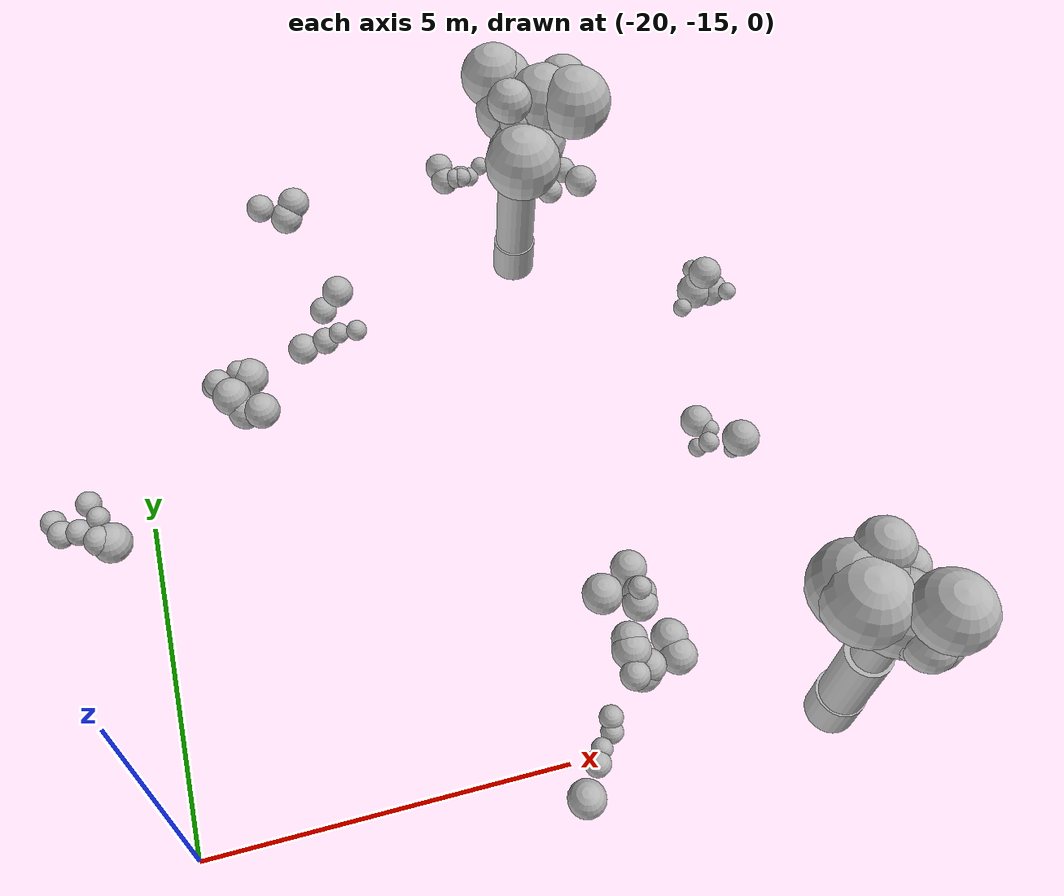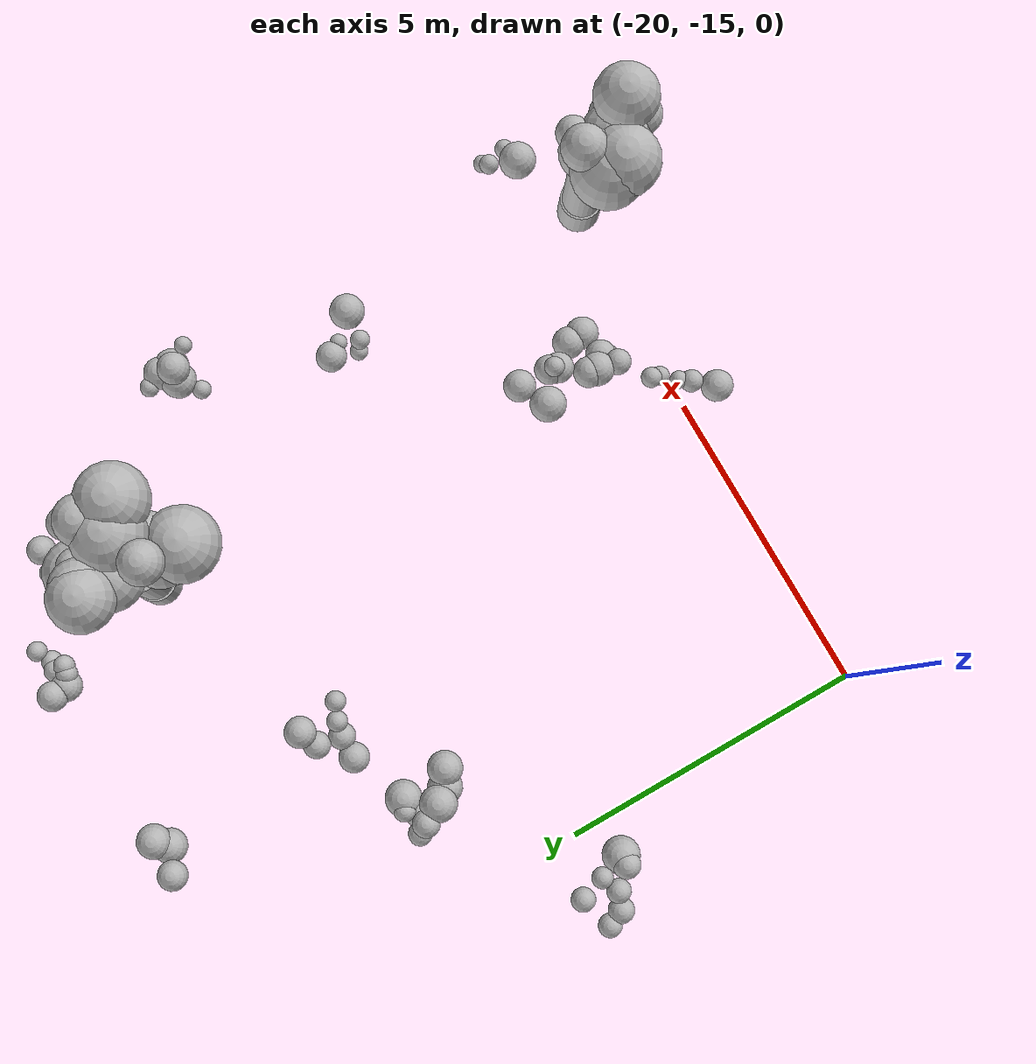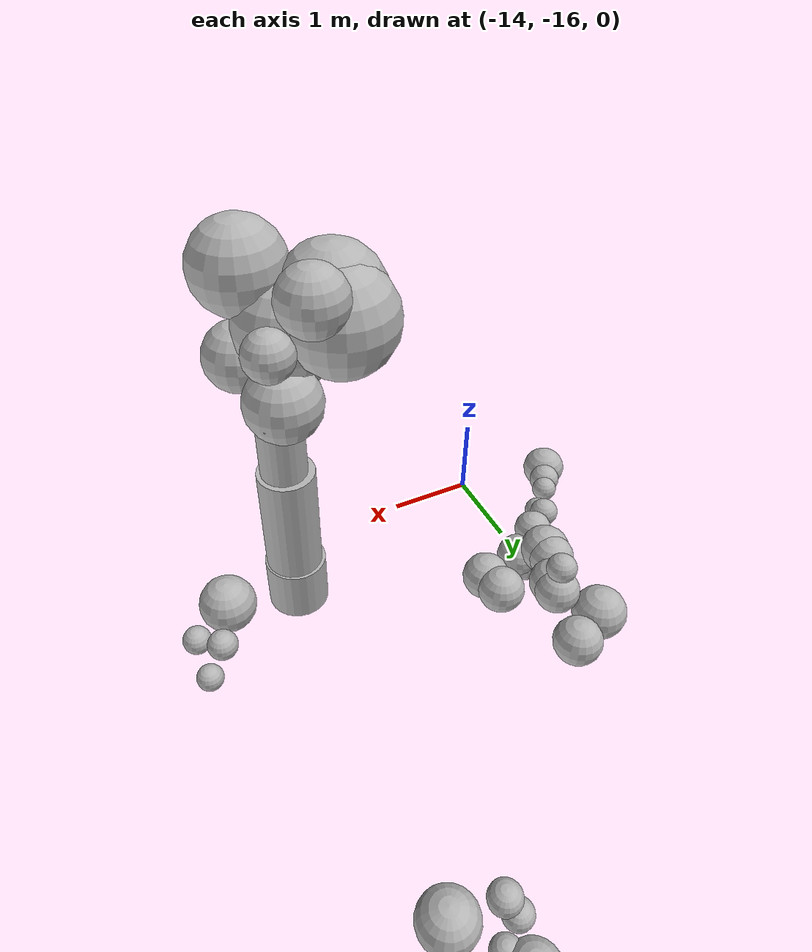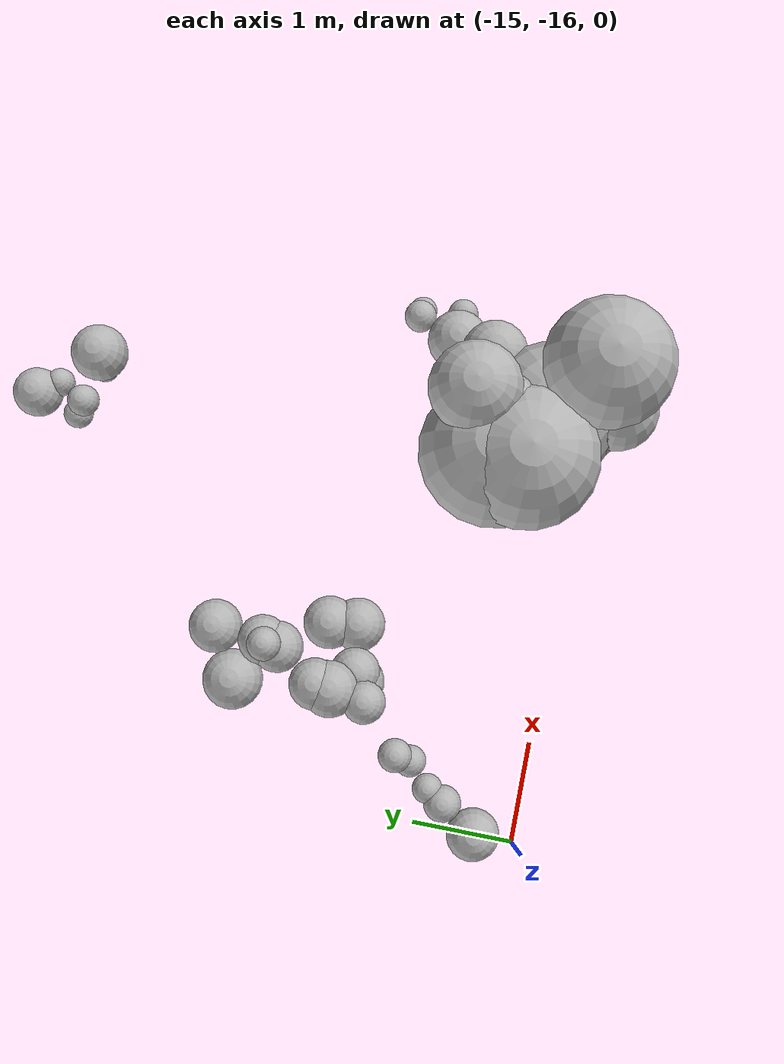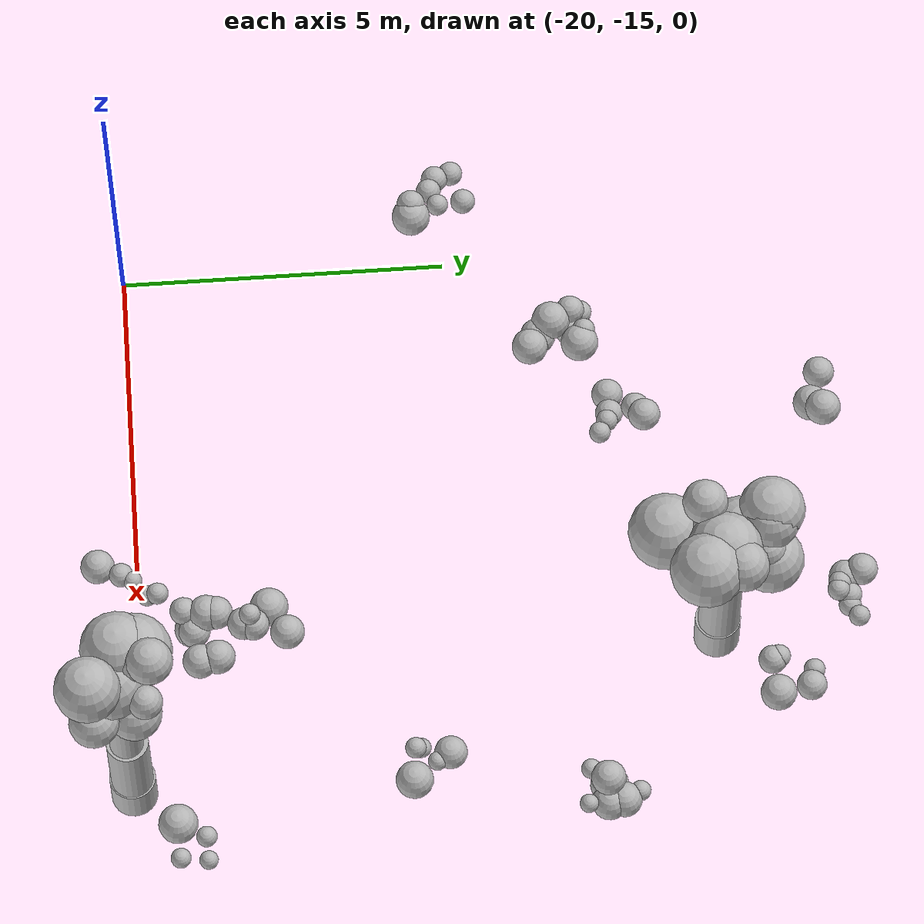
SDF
<sdf version="1.6">
 <world name="default">
  <model name="bush_6">
   <static>true</static>
   <pose>-11.2964 -15.1769 0 0 0 0</pose>
   <link name="trunk">
    <pose>0 0 1.5000 0 0 0</pose>
    <collision name="trunk_c">
     <geometry><cylinder><radius>0.3500</radius><length>3.0000</length></cylinder></geometry>
    </collision>
   </link>
   <link name="trunk_v0">
    <pose>0.0013 -0.0008 0.3100 0 0 0</pose>
    <visual name="trunk_v0_v">
     <geometry><cylinder><radius>0.3448</radius><length>0.6448</length></cylinder></geometry>
     <material>
      <script>
       <uri>model://bushfire/materials/scripts</uri>
       <uri>model://bushfire/materials/textures</uri>
       <name>Bushfire/CharBark</name>
      </script>
     </material>
    </visual>
   </link>
   <link name="trunk_v1">
    <pose>0.0093 -0.0059 1.2700 0 0 0</pose>
    <visual name="trunk_v1_v">
     <geometry><cylinder><radius>0.3150</radius><length>1.3520</length></cylinder></geometry>
     <material>
      <script>
       <uri>model://bushfire/materials/scripts</uri>
       <uri>model://bushfire/materials/textures</uri>
       <name>Bushfire/BarkStringy</name>
      </script>
     </material>
    </visual>
   </link>
   <link name="trunk_v2">
    <pose>0.0236 -0.0149 2.4600 0 0 0</pose>
    <visual name="trunk_v2_v">
     <geometry><cylinder><radius>0.2520</radius><length>1.1232</length></cylinder></geometry>
     <material>
      <script>
       <uri>model://bushfire/materials/scripts</uri>
       <uri>model://bushfire/materials/textures</uri>
       <name>Bushfire/BarkStringy</name>
      </script>
     </material>
    </visual>
   </link>
   <link name="branch0">
    <pose>-0.2503 0.0644 2.9720 0 0.8070 2.8900</pose>
    <visual name="branch0_v">
     <geometry><cylinder><radius>0.0356</radius><length>0.7158</length></cylinder></geometry>
     <material>
      <script>
       <uri>model://bushfire/materials/scripts</uri>
       <uri>model://bushfire/materials/textures</uri>
       <name>Bushfire/BarkStringy</name>
      </script>
     </material>
    </visual>
   </link>
   <link name="branch1">
    <pose>0.0379 -0.2902 2.9688 0 0.9047 4.8422</pose>
    <visual name="branch1_v">
     <geometry><cylinder><radius>0.0315</radius><length>0.7445</length></cylinder></geometry>
     <material>
      <script>
       <uri>model://bushfire/materials/scripts</uri>
       <uri>model://bushfire/materials/textures</uri>
       <name>Bushfire/BarkStringy</name>
      </script>
     </material>
    </visual>
   </link>
   <link name="branch2">
    <pose>0.1408 0.2064 2.6570 0 0.8220 7.2553</pose>
    <visual name="branch2_v">
     <geometry><cylinder><radius>0.0325</radius><length>0.6823</length></cylinder></geometry>
     <material>
      <script>
       <uri>model://bushfire/materials/scripts</uri>
       <uri>model://bushfire/materials/textures</uri>
       <name>Bushfire/BarkStringy</name>
      </script>
     </material>
    </visual>
   </link>
   <link name="foliage0">
    <pose>-0.2468 0.4443 4.1357 0 0 0</pose>
    <visual name="foliage0_v">
     <geometry><sphere><radius>0.3452</radius></sphere></geometry>
     <material>
      <script>
       <uri>model://bushfire/materials/scripts</uri>
       <uri>model://bushfire/materials/textures</uri>
       <name>Bushfire/Foliage1</name>
      </script>
     </material>
    </visual>
   </link>
   <link name="foliage1">
    <pose>0.1242 -0.4595 4.1093 0 0 0</pose>
    <visual name="foliage1_v">
     <geometry><sphere><radius>0.4837</radius></sphere></geometry>
     <material>
      <script>
       <uri>model://bushfire/materials/scripts</uri>
       <uri>model://bushfire/materials/textures</uri>
       <name>Bushfire/Foliage0</name>
      </script>
     </material>
    </visual>
   </link>
   <link name="foliage2">
    <pose>-0.1903 -0.1440 3.5919 0 0 0</pose>
    <visual name="foliage2_v">
     <geometry><sphere><radius>0.5344</radius></sphere></geometry>
     <material>
      <script>
       <uri>model://bushfire/materials/scripts</uri>
       <uri>model://bushfire/materials/textures</uri>
       <name>Bushfire/Foliage2</name>
      </script>
     </material>
    </visual>
   </link>
   <link name="foliage3">
    <pose>-0.5974 0.2139 3.7389 0 0 0</pose>
    <visual name="foliage3_v">
     <geometry><sphere><radius>0.5688</radius></sphere></geometry>
     <material>
      <script>
       <uri>model://bushfire/materials/scripts</uri>
       <uri>model://bushfire/materials/textures</uri>
       <name>Bushfire/Foliage1</name>
      </script>
     </material>
    </visual>
   </link>
   <link name="foliage4">
    <pose>-0.1333 -0.3789 3.6196 0 0 0</pose>
    <visual name="foliage4_v">
     <geometry><sphere><radius>0.3779</radius></sphere></geometry>
     <material>
      <script>
       <uri>model://bushfire/materials/scripts</uri>
       <uri>model://bushfire/materials/textures</uri>
       <name>Bushfire/Foliage0</name>
      </script>
     </material>
    </visual>
   </link>
   <link name="foliage5">
    <pose>0.0120 0.1599 2.9449 0 0 0</pose>
    <visual name="foliage5_v">
     <geometry><sphere><radius>0.4041</radius></sphere></geometry>
     <material>
      <script>
       <uri>model://bushfire/materials/scripts</uri>
       <uri>model://bushfire/materials/textures</uri>
       <name>Bushfire/Foliage2</name>
      </script>
     </material>
    </visual>
   </link>
   <link name="foliage6">
    <pose>-0.6095 -0.0172 3.8568 0 0 0</pose>
    <visual name="foliage6_v">
     <geometry><sphere><radius>0.5437</radius></sphere></geometry>
     <material>
      <script>
       <uri>model://bushfire/materials/scripts</uri>
       <uri>model://bushfire/materials/textures</uri>
       <name>Bushfire/Foliage2</name>
      </script>
     </material>
    </visual>
   </link>
   <link name="foliage7">
    <pose>0.2371 -0.4228 3.1905 0 0 0</pose>
    <visual name="foliage7_v">
     <geometry><sphere><radius>0.3675</radius></sphere></geometry>
     <material>
      <script>
       <uri>model://bushfire/materials/scripts</uri>
       <uri>model://bushfire/materials/textures</uri>
       <name>Bushfire/Foliage2</name>
      </script>
     </material>
    </visual>
   </link>
   <link name="foliage8">
    <pose>0.1614 0.3468 3.6369 0 0 0</pose>
    <visual name="foliage8_v">
     <geometry><sphere><radius>0.2556</radius></sphere></geometry>
     <material>
      <script>
       <uri>model://bushfire/materials/scripts</uri>
       <uri>model://bushfire/materials/textures</uri>
       <name>Bushfire/Foliage1</name>
      </script>
     </material>
    </visual>
   </link>
   <link name="foliage9">
    <pose>-0.3594 0.2647 3.9583 0 0 0</pose>
    <visual name="foliage9_v">
     <geometry><sphere><radius>0.3339</radius></sphere></geometry>
     <material>
      <script>
       <uri>model://bushfire/materials/scripts</uri>
       <uri>model://bushfire/materials/textures</uri>
       <name>Bushfire/Foliage1</name>
      </script>
     </material>
    </visual>
   </link>
   <link name="foliage10">
    <pose>-0.0950 -0.6220 3.6921 0 0 0</pose>
    <visual name="foliage10_v">
     <geometry><sphere><radius>0.3163</radius></sphere></geometry>
     <material>
      <script>
       <uri>model://bushfire/materials/scripts</uri>
       <uri>model://bushfire/materials/textures</uri>
       <name>Bushfire/Foliage1</name>
      </script>
     </material>
    </visual>
   </link>
  </model>
  <model name="bush_15">
   <static>true</static>
   <pose>-13.3028 -6.2705 0 0 0 0</pose>
   <link name="trunk">
    <pose>0 0 1.5000 0 0 0</pose>
    <collision name="trunk_c">
     <geometry><cylinder><radius>0.3500</radius><length>3.0000</length></cylinder></geometry>
    </collision>
   </link>
   <link name="trunk_v0">
    <pose>0.0008 0.0015 0.3100 0 0 0</pose>
    <visual name="trunk_v0_v">
     <geometry><cylinder><radius>0.3448</radius><length>0.6448</length></cylinder></geometry>
     <material>
      <script>
       <uri>model://bushfire/materials/scripts</uri>
       <uri>model://bushfire/materials/textures</uri>
       <name>Bushfire/CharBark</name>
      </script>
     </material>
    </visual>
   </link>
   <link name="trunk_v1">
    <pose>0.0056 0.0110 1.2700 0 0 0</pose>
    <visual name="trunk_v1_v">
     <geometry><cylinder><radius>0.3150</radius><length>1.3520</length></cylinder></geometry>
     <material>
      <script>
       <uri>model://bushfire/materials/scripts</uri>
       <uri>model://bushfire/materials/textures</uri>
       <name>Bushfire/BarkStringy</name>
      </script>
     </material>
    </visual>
   </link>
   <link name="trunk_v2">
    <pose>0.0142 0.0278 2.4600 0 0 0</pose>
    <visual name="trunk_v2_v">
     <geometry><cylinder><radius>0.2520</radius><length>1.1232</length></cylinder></geometry>
     <material>
      <script>
       <uri>model://bushfire/materials/scripts</uri>
       <uri>model://bushfire/materials/textures</uri>
       <name>Bushfire/BarkStringy</name>
      </script>
     </material>
    </visual>
   </link>
   <link name="branch0">
    <pose>-0.0453 0.2363 2.9069 0 0.9582 1.7604</pose>
    <visual name="branch0_v">
     <geometry><cylinder><radius>0.0379</radius><length>0.5883</length></cylinder></geometry>
     <material>
      <script>
       <uri>model://bushfire/materials/scripts</uri>
       <uri>model://bushfire/materials/textures</uri>
       <name>Bushfire/BarkStringy</name>
      </script>
     </material>
    </visual>
   </link>
   <link name="branch1">
    <pose>-0.1605 -0.2675 2.7784 0 0.7304 4.1719</pose>
    <visual name="branch1_v">
     <geometry><cylinder><radius>0.0489</radius><length>0.9350</length></cylinder></geometry>
     <material>
      <script>
       <uri>model://bushfire/materials/scripts</uri>
       <uri>model://bushfire/materials/textures</uri>
       <name>Bushfire/BarkStringy</name>
      </script>
     </material>
    </visual>
   </link>
   <link name="branch2">
    <pose>0.2253 -0.0423 2.7707 0 0.8816 6.0976</pose>
    <visual name="branch2_v">
     <geometry><cylinder><radius>0.0345</radius><length>0.5940</length></cylinder></geometry>
     <material>
      <script>
       <uri>model://bushfire/materials/scripts</uri>
       <uri>model://bushfire/materials/textures</uri>
       <name>Bushfire/BarkStringy</name>
      </script>
     </material>
    </visual>
   </link>
   <link name="foliage0">
    <pose>0.2806 0.3316 3.1564 0 0 0</pose>
    <visual name="foliage0_v">
     <geometry><sphere><radius>0.2543</radius></sphere></geometry>
     <material>
      <script>
       <uri>model://bushfire/materials/scripts</uri>
       <uri>model://bushfire/materials/textures</uri>
       <name>Bushfire/Foliage2</name>
      </script>
     </material>
    </visual>
   </link>
   <link name="foliage1">
    <pose>-0.1998 -0.8408 3.3024 0 0 0</pose>
    <visual name="foliage1_v">
     <geometry><sphere><radius>0.5692</radius></sphere></geometry>
     <material>
      <script>
       <uri>model://bushfire/materials/scripts</uri>
       <uri>model://bushfire/materials/textures</uri>
       <name>Bushfire/Foliage2</name>
      </script>
     </material>
    </visual>
   </link>
   <link name="foliage2">
    <pose>0.3496 -0.0493 3.7048 0 0 0</pose>
    <visual name="foliage2_v">
     <geometry><sphere><radius>0.5628</radius></sphere></geometry>
     <material>
      <script>
       <uri>model://bushfire/materials/scripts</uri>
       <uri>model://bushfire/materials/textures</uri>
       <name>Bushfire/Foliage1</name>
      </script>
     </material>
    </visual>
   </link>
   <link name="foliage3">
    <pose>-0.2489 0.6892 3.7111 0 0 0</pose>
    <visual name="foliage3_v">
     <geometry><sphere><radius>0.4962</radius></sphere></geometry>
     <material>
      <script>
       <uri>model://bushfire/materials/scripts</uri>
       <uri>model://bushfire/materials/textures</uri>
       <name>Bushfire/Foliage1</name>
      </script>
     </material>
    </visual>
   </link>
   <link name="foliage4">
    <pose>-0.1283 -0.5168 3.1268 0 0 0</pose>
    <visual name="foliage4_v">
     <geometry><sphere><radius>0.5210</radius></sphere></geometry>
     <material>
      <script>
       <uri>model://bushfire/materials/scripts</uri>
       <uri>model://bushfire/materials/textures</uri>
       <name>Bushfire/Foliage1</name>
      </script>
     </material>
    </visual>
   </link>
   <link name="foliage5">
    <pose>0.6953 0.1839 3.8385 0 0 0</pose>
    <visual name="foliage5_v">
     <geometry><sphere><radius>0.3834</radius></sphere></geometry>
     <material>
      <script>
       <uri>model://bushfire/materials/scripts</uri>
       <uri>model://bushfire/materials/textures</uri>
       <name>Bushfire/Foliage2</name>
      </script>
     </material>
    </visual>
   </link>
   <link name="foliage6">
    <pose>-0.1236 0.2468 3.3676 0 0 0</pose>
    <visual name="foliage6_v">
     <geometry><sphere><radius>0.5019</radius></sphere></geometry>
     <material>
      <script>
       <uri>model://bushfire/materials/scripts</uri>
       <uri>model://bushfire/materials/textures</uri>
       <name>Bushfire/Foliage1</name>
      </script>
     </material>
    </visual>
   </link>
   <link name="foliage7">
    <pose>-0.2756 -0.2929 4.0412 0 0 0</pose>
    <visual name="foliage7_v">
     <geometry><sphere><radius>0.3328</radius></sphere></geometry>
     <material>
      <script>
       <uri>model://bushfire/materials/scripts</uri>
       <uri>model://bushfire/materials/textures</uri>
       <name>Bushfire/Foliage1</name>
      </script>
     </material>
    </visual>
   </link>
   <link name="foliage8">
    <pose>0.7243 -0.3387 3.8360 0 0 0</pose>
    <visual name="foliage8_v">
     <geometry><sphere><radius>0.5501</radius></sphere></geometry>
     <material>
      <script>
       <uri>model://bushfire/materials/scripts</uri>
       <uri>model://bushfire/materials/textures</uri>
       <name>Bushfire/Foliage1</name>
      </script>
     </material>
    </visual>
   </link>
   <link name="foliage9">
    <pose>-0.1058 0.6540 3.6654 0 0 0</pose>
    <visual name="foliage9_v">
     <geometry><sphere><radius>0.4434</radius></sphere></geometry>
     <material>
      <script>
       <uri>model://bushfire/materials/scripts</uri>
       <uri>model://bushfire/materials/textures</uri>
       <name>Bushfire/Foliage1</name>
      </script>
     </material>
    </visual>
   </link>
   <link name="foliage10">
    <pose>-0.1384 -0.2481 3.5909 0 0 0</pose>
    <visual name="foliage10_v">
     <geometry><sphere><radius>0.2648</radius></sphere></geometry>
     <material>
      <script>
       <uri>model://bushfire/materials/scripts</uri>
       <uri>model://bushfire/materials/textures</uri>
       <name>Bushfire/Foliage2</name>
      </script>
     </material>
    </visual>
   </link>
   <link name="foliage11">
    <pose>0.0347 -0.3317 3.0987 0 0 0</pose>
    <visual name="foliage11_v">
     <geometry><sphere><radius>0.3453</radius></sphere></geometry>
     <material>
      <script>
       <uri>model://bushfire/materials/scripts</uri>
       <uri>model://bushfire/materials/textures</uri>
       <name>Bushfire/Foliage1</name>
      </script>
     </material>
    </visual>
   </link>
   <link name="foliage12">
    <pose>0.2358 0.5884 3.3986 0 0 0</pose>
    <visual name="foliage12_v">
     <geometry><sphere><radius>0.2831</radius></sphere></geometry>
     <material>
      <script>
       <uri>model://bushfire/materials/scripts</uri>
       <uri>model://bushfire/materials/textures</uri>
       <name>Bushfire/Foliage1</name>
      </script>
     </material>
    </visual>
   </link>
   <link name="foliage13">
    <pose>0.0742 -0.3001 3.1926 0 0 0</pose>
    <visual name="foliage13_v">
     <geometry><sphere><radius>0.5506</radius></sphere></geometry>
     <material>
      <script>
       <uri>model://bushfire/materials/scripts</uri>
       <uri>model://bushfire/materials/textures</uri>
       <name>Bushfire/Foliage1</name>
      </script>
     </material>
    </visual>
   </link>
   <link name="foliage14">
    <pose>0.2673 0.1033 3.4279 0 0 0</pose>
    <visual name="foliage14_v">
     <geometry><sphere><radius>0.4456</radius></sphere></geometry>
     <material>
      <script>
       <uri>model://bushfire/materials/scripts</uri>
       <uri>model://bushfire/materials/textures</uri>
       <name>Bushfire/Foliage0</name>
      </script>
     </material>
    </visual>
   </link>
   <link name="foliage15">
    <pose>0.2271 0.6607 3.0324 0 0 0</pose>
    <visual name="foliage15_v">
     <geometry><sphere><radius>0.4992</radius></sphere></geometry>
     <material>
      <script>
       <uri>model://bushfire/materials/scripts</uri>
       <uri>model://bushfire/materials/textures</uri>
       <name>Bushfire/Foliage1</name>
      </script>
     </material>
    </visual>
   </link>
  </model>
  <model name="scrub">
   <static>true</static>
   <link name="scrub2_0">
    <pose>-13.5702 -4.2133 0.2416 0 0 0</pose>
    <visual name="scrub2_0_v">
     <geometry><sphere><radius>0.1723</radius></sphere></geometry>
     <material>
      <script>
       <uri>model://bushfire/materials/scripts</uri>
       <uri>model://bushfire/materials/textures</uri>
       <name>Bushfire/Foliage2</name>
      </script>
     </material>
    </visual>
   </link>
   <link name="scrub2_2">
    <pose>-14.0339 -4.2459 0.2988 0 0 0</pose>
    <visual name="scrub2_2_v">
     <geometry><sphere><radius>0.2493</radius></sphere></geometry>
     <material>
      <script>
       <uri>model://bushfire/materials/scripts</uri>
       <uri>model://bushfire/materials/textures</uri>
       <name>Bushfire/Foliage2</name>
      </script>
     </material>
    </visual>
   </link>
   <link name="scrub2_4">
    <pose>-13.3341 -4.1019 0.3472 0 0 0</pose>
    <visual name="scrub2_4_v">
     <geometry><sphere><radius>0.1604</radius></sphere></geometry>
     <material>
      <script>
       <uri>model://bushfire/materials/scripts</uri>
       <uri>model://bushfire/materials/textures</uri>
       <name>Bushfire/Foliage2</name>
      </script>
     </material>
    </visual>
   </link>
   <link name="scrub2_5">
    <pose>-13.7289 -4.2130 0.2849 0 0 0</pose>
    <visual name="scrub2_5_v">
     <geometry><sphere><radius>0.1942</radius></sphere></geometry>
     <material>
      <script>
       <uri>model://bushfire/materials/scripts</uri>
       <uri>model://bushfire/materials/textures</uri>
       <name>Bushfire/Foliage1</name>
      </script>
     </material>
    </visual>
   </link>
   <link name="scrub2_7">
    <pose>-13.7555 -4.3795 0.4305 0 0 0</pose>
    <visual name="scrub2_7_v">
     <geometry><sphere><radius>0.1699</radius></sphere></geometry>
     <material>
      <script>
       <uri>model://bushfire/materials/scripts</uri>
       <uri>model://bushfire/materials/textures</uri>
       <name>Bushfire/Foliage0</name>
      </script>
     </material>
    </visual>
   </link>
   <link name="scrub2_8">
    <pose>-13.8808 -4.3504 0.4092 0 0 0</pose>
    <visual name="scrub2_8_v">
     <geometry><sphere><radius>0.1737</radius></sphere></geometry>
     <material>
      <script>
       <uri>model://bushfire/materials/scripts</uri>
       <uri>model://bushfire/materials/textures</uri>
       <name>Bushfire/Foliage2</name>
      </script>
     </material>
    </visual>
   </link>
   <link name="scrub8_2">
    <pose>-14.0821 -3.9960 0.4034 0 0 0</pose>
    <visual name="scrub8_2_v">
     <geometry><sphere><radius>0.2435</radius></sphere></geometry>
     <material>
      <script>
       <uri>model://bushfire/materials/scripts</uri>
       <uri>model://bushfire/materials/textures</uri>
       <name>Bushfire/Foliage2</name>
      </script>
     </material>
    </visual>
   </link>
   <link name="scrub9_0">
    <pose>-13.1899 -14.0897 0.5073 0 0 0</pose>
    <visual name="scrub9_0_v">
     <geometry><sphere><radius>0.2639</radius></sphere></geometry>
     <material>
      <script>
       <uri>model://bushfire/materials/scripts</uri>
       <uri>model://bushfire/materials/textures</uri>
       <name>Bushfire/Foliage0</name>
      </script>
     </material>
    </visual>
   </link>
   <link name="scrub9_1">
    <pose>-13.2246 -13.8148 0.5431 0 0 0</pose>
    <visual name="scrub9_1_v">
     <geometry><sphere><radius>0.2602</radius></sphere></geometry>
     <material>
      <script>
       <uri>model://bushfire/materials/scripts</uri>
       <uri>model://bushfire/materials/textures</uri>
       <name>Bushfire/Foliage0</name>
      </script>
     </material>
    </visual>
   </link>
   <link name="scrub9_2">
    <pose>-13.8371 -13.8056 0.8013 0 0 0</pose>
    <visual name="scrub9_2_v">
     <geometry><sphere><radius>0.2505</radius></sphere></geometry>
     <material>
      <script>
       <uri>model://bushfire/materials/scripts</uri>
       <uri>model://bushfire/materials/textures</uri>
       <name>Bushfire/Foliage1</name>
      </script>
     </material>
    </visual>
   </link>
   <link name="scrub9_3">
    <pose>-13.9182 -14.2974 0.7619 0 0 0</pose>
    <visual name="scrub9_3_v">
     <geometry><sphere><radius>0.2091</radius></sphere></geometry>
     <material>
      <script>
       <uri>model://bushfire/materials/scripts</uri>
       <uri>model://bushfire/materials/textures</uri>
       <name>Bushfire/Foliage0</name>
      </script>
     </material>
    </visual>
   </link>
   <link name="scrub9_4">
    <pose>-13.6507 -14.1523 0.5802 0 0 0</pose>
    <visual name="scrub9_4_v">
     <geometry><sphere><radius>0.2418</radius></sphere></geometry>
     <material>
      <script>
       <uri>model://bushfire/materials/scripts</uri>
       <uri>model://bushfire/materials/textures</uri>
       <name>Bushfire/Foliage0</name>
      </script>
     </material>
    </visual>
   </link>
   <link name="scrub9_5">
    <pose>-13.8556 -13.9539 0.7766 0 0 0</pose>
    <visual name="scrub9_5_v">
     <geometry><sphere><radius>0.2745</radius></sphere></geometry>
     <material>
      <script>
       <uri>model://bushfire/materials/scripts</uri>
       <uri>model://bushfire/materials/textures</uri>
       <name>Bushfire/Foliage0</name>
      </script>
     </material>
    </visual>
   </link>
   <link name="scrub9_6">
    <pose>-13.7402 -14.1790 0.4725 0 0 0</pose>
    <visual name="scrub9_6_v">
     <geometry><sphere><radius>0.2741</radius></sphere></geometry>
     <material>
      <script>
       <uri>model://bushfire/materials/scripts</uri>
       <uri>model://bushfire/materials/textures</uri>
       <name>Bushfire/Foliage1</name>
      </script>
     </material>
    </visual>
   </link>
   <link name="scrub15_1">
    <pose>-17.4214 -4.3403 0.5567 0 0 0</pose>
    <visual name="scrub15_1_v">
     <geometry><sphere><radius>0.2401</radius></sphere></geometry>
     <material>
      <script>
       <uri>model://bushfire/materials/scripts</uri>
       <uri>model://bushfire/materials/textures</uri>
       <name>Bushfire/Foliage0</name>
      </script>
     </material>
    </visual>
   </link>
   <link name="scrub15_3">
    <pose>-16.8286 -4.3276 0.5220 0 0 0</pose>
    <visual name="scrub15_3_v">
     <geometry><sphere><radius>0.2748</radius></sphere></geometry>
     <material>
      <script>
       <uri>model://bushfire/materials/scripts</uri>
       <uri>model://bushfire/materials/textures</uri>
       <name>Bushfire/Foliage1</name>
      </script>
     </material>
    </visual>
   </link>
   <link name="scrub15_4">
    <pose>-17.0027 -4.4874 0.3564 0 0 0</pose>
    <visual name="scrub15_4_v">
     <geometry><sphere><radius>0.2778</radius></sphere></geometry>
     <material>
      <script>
       <uri>model://bushfire/materials/scripts</uri>
       <uri>model://bushfire/materials/textures</uri>
       <name>Bushfire/Foliage0</name>
      </script>
     </material>
    </visual>
   </link>
   <link name="scrub23_0">
    <pose>-13.5610 -13.3986 0.9459 0 0 0</pose>
    <visual name="scrub23_0_v">
     <geometry><sphere><radius>0.2463</radius></sphere></geometry>
     <material>
      <script>
       <uri>model://bushfire/materials/scripts</uri>
       <uri>model://bushfire/materials/textures</uri>
       <name>Bushfire/Foliage1</name>
      </script>
     </material>
    </visual>
   </link>
   <link name="scrub23_1">
    <pose>-13.5221 -13.2526 0.9688 0 0 0</pose>
    <visual name="scrub23_1_v">
     <geometry><sphere><radius>0.2377</radius></sphere></geometry>
     <material>
      <script>
       <uri>model://bushfire/materials/scripts</uri>
       <uri>model://bushfire/materials/textures</uri>
       <name>Bushfire/Foliage1</name>
      </script>
     </material>
    </visual>
   </link>
   <link name="scrub23_2">
    <pose>-13.4781 -12.7528 0.7350 0 0 0</pose>
    <visual name="scrub23_2_v">
     <geometry><sphere><radius>0.2599</radius></sphere></geometry>
     <material>
      <script>
       <uri>model://bushfire/materials/scripts</uri>
       <uri>model://bushfire/materials/textures</uri>
       <name>Bushfire/Foliage1</name>
      </script>
     </material>
    </visual>
   </link>
   <link name="scrub23_3">
    <pose>-13.5647 -13.2987 1.2509 0 0 0</pose>
    <visual name="scrub23_3_v">
     <geometry><sphere><radius>0.1605</radius></sphere></geometry>
     <material>
      <script>
       <uri>model://bushfire/materials/scripts</uri>
       <uri>model://bushfire/materials/textures</uri>
       <name>Bushfire/Foliage1</name>
      </script>
     </material>
    </visual>
   </link>
   <link name="scrub23_4">
    <pose>-13.9435 -13.0097 0.6632 0 0 0</pose>
    <visual name="scrub23_4_v">
     <geometry><sphere><radius>0.2925</radius></sphere></geometry>
     <material>
      <script>
       <uri>model://bushfire/materials/scripts</uri>
       <uri>model://bushfire/materials/textures</uri>
       <name>Bushfire/Foliage2</name>
      </script>
     </material>
    </visual>
   </link>
   <link name="scrub29_0">
    <pose>-16.8007 -7.2457 0.9763 0 0 0</pose>
    <visual name="scrub29_0_v">
     <geometry><sphere><radius>0.2139</radius></sphere></geometry>
     <material>
      <script>
       <uri>model://bushfire/materials/scripts</uri>
       <uri>model://bushfire/materials/textures</uri>
       <name>Bushfire/Foliage0</name>
      </script>
     </material>
    </visual>
   </link>
   <link name="scrub29_1">
    <pose>-16.5212 -7.1347 1.2428 0 0 0</pose>
    <visual name="scrub29_1_v">
     <geometry><sphere><radius>0.2461</radius></sphere></geometry>
     <material>
      <script>
       <uri>model://bushfire/materials/scripts</uri>
       <uri>model://bushfire/materials/textures</uri>
       <name>Bushfire/Foliage0</name>
      </script>
     </material>
    </visual>
   </link>
   <link name="scrub29_2">
    <pose>-17.2399 -7.6283 0.5897 0 0 0</pose>
    <visual name="scrub29_2_v">
     <geometry><sphere><radius>0.2417</radius></sphere></geometry>
     <material>
      <script>
       <uri>model://bushfire/materials/scripts</uri>
       <uri>model://bushfire/materials/textures</uri>
       <name>Bushfire/Foliage2</name>
      </script>
     </material>
    </visual>
   </link>
   <link name="scrub29_3">
    <pose>-16.6399 -7.6850 0.8824 0 0 0</pose>
    <visual name="scrub29_3_v">
     <geometry><sphere><radius>0.1648</radius></sphere></geometry>
     <material>
      <script>
       <uri>model://bushfire/materials/scripts</uri>
       <uri>model://bushfire/materials/textures</uri>
       <name>Bushfire/Foliage1</name>
      </script>
     </material>
    </visual>
   </link>
   <link name="scrub29_4">
    <pose>-16.3679 -7.8171 1.0272 0 0 0</pose>
    <visual name="scrub29_4_v">
     <geometry><sphere><radius>0.1632</radius></sphere></geometry>
     <material>
      <script>
       <uri>model://bushfire/materials/scripts</uri>
       <uri>model://bushfire/materials/textures</uri>
       <name>Bushfire/Foliage2</name>
      </script>
     </material>
    </visual>
   </link>
   <link name="scrub29_5">
    <pose>-16.8661 -7.6315 0.6848 0 0 0</pose>
    <visual name="scrub29_5_v">
     <geometry><sphere><radius>0.2129</radius></sphere></geometry>
     <material>
      <script>
       <uri>model://bushfire/materials/scripts</uri>
       <uri>model://bushfire/materials/textures</uri>
       <name>Bushfire/Foliage1</name>
      </script>
     </material>
    </visual>
   </link>
   <link name="scrub34_0">
    <pose>-14.9743 -15.5797 0.2945 0 0 0</pose>
    <visual name="scrub34_0_v">
     <geometry><sphere><radius>0.2612</radius></sphere></geometry>
     <material>
      <script>
       <uri>model://bushfire/materials/scripts</uri>
       <uri>model://bushfire/materials/textures</uri>
       <name>Bushfire/Foliage1</name>
      </script>
     </material>
    </visual>
   </link>
   <link name="scrub34_1">
    <pose>-14.6113 -15.0524 0.4848 0 0 0</pose>
    <visual name="scrub34_1_v">
     <geometry><sphere><radius>0.1467</radius></sphere></geometry>
     <material>
      <script>
       <uri>model://bushfire/materials/scripts</uri>
       <uri>model://bushfire/materials/textures</uri>
       <name>Bushfire/Foliage1</name>
      </script>
     </material>
    </visual>
   </link>
   <link name="scrub34_2">
    <pose>-14.3635 -14.6857 0.5010 0 0 0</pose>
    <visual name="scrub34_2_v">
     <geometry><sphere><radius>0.1662</radius></sphere></geometry>
     <material>
      <script>
       <uri>model://bushfire/materials/scripts</uri>
       <uri>model://bushfire/materials/textures</uri>
       <name>Bushfire/Foliage0</name>
      </script>
     </material>
    </visual>
   </link>
   <link name="scrub34_3">
    <pose>-14.7254 -15.2225 0.4697 0 0 0</pose>
    <visual name="scrub34_3_v">
     <geometry><sphere><radius>0.1830</radius></sphere></geometry>
     <material>
      <script>
       <uri>model://bushfire/materials/scripts</uri>
       <uri>model://bushfire/materials/textures</uri>
       <name>Bushfire/Foliage1</name>
      </script>
     </material>
    </visual>
   </link>
   <link name="scrub34_4">
    <pose>-14.3913 -14.8419 0.3833 0 0 0</pose>
    <visual name="scrub34_4_v">
     <geometry><sphere><radius>0.1574</radius></sphere></geometry>
     <material>
      <script>
       <uri>model://bushfire/materials/scripts</uri>
       <uri>model://bushfire/materials/textures</uri>
       <name>Bushfire/Foliage0</name>
      </script>
     </material>
    </visual>
   </link>
   <link name="scrub44_0">
    <pose>-18.4911 -8.4093 0.7798 0 0 0</pose>
    <visual name="scrub44_0_v">
     <geometry><sphere><radius>0.2946</radius></sphere></geometry>
     <material>
      <script>
       <uri>model://bushfire/materials/scripts</uri>
       <uri>model://bushfire/materials/textures</uri>
       <name>Bushfire/Foliage2</name>
      </script>
     </material>
    </visual>
   </link>
   <link name="scrub44_1">
    <pose>-18.6625 -8.0964 0.7693 0 0 0</pose>
    <visual name="scrub44_1_v">
     <geometry><sphere><radius>0.2184</radius></sphere></geometry>
     <material>
      <script>
       <uri>model://bushfire/materials/scripts</uri>
       <uri>model://bushfire/materials/textures</uri>
       <name>Bushfire/Foliage1</name>
      </script>
     </material>
    </visual>
   </link>
   <link name="scrub44_2">
    <pose>-18.7565 -7.9400 0.4953 0 0 0</pose>
    <visual name="scrub44_2_v">
     <geometry><sphere><radius>0.1897</radius></sphere></geometry>
     <material>
      <script>
       <uri>model://bushfire/materials/scripts</uri>
       <uri>model://bushfire/materials/textures</uri>
       <name>Bushfire/Foliage0</name>
      </script>
     </material>
    </visual>
   </link>
   <link name="scrub44_3">
    <pose>-18.4383 -8.0902 0.5232 0 0 0</pose>
    <visual name="scrub44_3_v">
     <geometry><sphere><radius>0.2483</radius></sphere></geometry>
     <material>
      <script>
       <uri>model://bushfire/materials/scripts</uri>
       <uri>model://bushfire/materials/textures</uri>
       <name>Bushfire/Foliage1</name>
      </script>
     </material>
    </visual>
   </link>
   <link name="scrub44_4">
    <pose>-18.1576 -7.9834 0.6219 0 0 0</pose>
    <visual name="scrub44_4_v">
     <geometry><sphere><radius>0.2901</radius></sphere></geometry>
     <material>
      <script>
       <uri>model://bushfire/materials/scripts</uri>
       <uri>model://bushfire/materials/textures</uri>
       <name>Bushfire/Foliage0</name>
      </script>
     </material>
    </visual>
   </link>
   <link name="scrub44_5">
    <pose>-18.3282 -7.9090 0.7178 0 0 0</pose>
    <visual name="scrub44_5_v">
     <geometry><sphere><radius>0.1750</radius></sphere></geometry>
     <material>
      <script>
       <uri>model://bushfire/materials/scripts</uri>
       <uri>model://bushfire/materials/textures</uri>
       <name>Bushfire/Foliage1</name>
      </script>
     </material>
    </visual>
   </link>
   <link name="scrub44_6">
    <pose>-18.0753 -8.7614 0.7411 0 0 0</pose>
    <visual name="scrub44_6_v">
     <geometry><sphere><radius>0.2771</radius></sphere></geometry>
     <material>
      <script>
       <uri>model://bushfire/materials/scripts</uri>
       <uri>model://bushfire/materials/textures</uri>
       <name>Bushfire/Foliage0</name>
      </script>
     </material>
    </visual>
   </link>
   <link name="scrub44_7">
    <pose>-18.3267 -8.6194 0.6024 0 0 0</pose>
    <visual name="scrub44_7_v">
     <geometry><sphere><radius>0.2740</radius></sphere></geometry>
     <material>
      <script>
       <uri>model://bushfire/materials/scripts</uri>
       <uri>model://bushfire/materials/textures</uri>
       <name>Bushfire/Foliage1</name>
      </script>
     </material>
    </visual>
   </link>
   <link name="scrub52_1">
    <pose>-9.9506 -14.1090 0.4962 0 0 0</pose>
    <visual name="scrub52_1_v">
     <geometry><sphere><radius>0.1416</radius></sphere></geometry>
     <material>
      <script>
       <uri>model://bushfire/materials/scripts</uri>
       <uri>model://bushfire/materials/textures</uri>
       <name>Bushfire/Foliage2</name>
      </script>
     </material>
    </visual>
   </link>
   <link name="scrub52_2">
    <pose>-10.3358 -14.5202 1.0224 0 0 0</pose>
    <visual name="scrub52_2_v">
     <geometry><sphere><radius>0.2949</radius></sphere></geometry>
     <material>
      <script>
       <uri>model://bushfire/materials/scripts</uri>
       <uri>model://bushfire/materials/textures</uri>
       <name>Bushfire/Foliage1</name>
      </script>
     </material>
    </visual>
   </link>
   <link name="scrub52_3">
    <pose>-9.9491 -14.5145 0.6344 0 0 0</pose>
    <visual name="scrub52_3_v">
     <geometry><sphere><radius>0.1510</radius></sphere></geometry>
     <material>
      <script>
       <uri>model://bushfire/materials/scripts</uri>
       <uri>model://bushfire/materials/textures</uri>
       <name>Bushfire/Foliage1</name>
      </script>
     </material>
    </visual>
   </link>
   <link name="scrub52_4">
    <pose>-10.1406 -14.1114 0.9325 0 0 0</pose>
    <visual name="scrub52_4_v">
     <geometry><sphere><radius>0.1558</radius></sphere></geometry>
     <material>
      <script>
       <uri>model://bushfire/materials/scripts</uri>
       <uri>model://bushfire/materials/textures</uri>
       <name>Bushfire/Foliage2</name>
      </script>
     </material>
    </visual>
   </link>
   <link name="scrub53_0">
    <pose>-11.8803 -5.4933 0.9421 0 0 0</pose>
    <visual name="scrub53_0_v">
     <geometry><sphere><radius>0.2716</radius></sphere></geometry>
     <material>
      <script>
       <uri>model://bushfire/materials/scripts</uri>
       <uri>model://bushfire/materials/textures</uri>
       <name>Bushfire/Foliage1</name>
      </script>
     </material>
    </visual>
   </link>
   <link name="scrub53_1">
    <pose>-12.4498 -5.5270 0.8802 0 0 0</pose>
    <visual name="scrub53_1_v">
     <geometry><sphere><radius>0.2158</radius></sphere></geometry>
     <material>
      <script>
       <uri>model://bushfire/materials/scripts</uri>
       <uri>model://bushfire/materials/textures</uri>
       <name>Bushfire/Foliage1</name>
      </script>
     </material>
    </visual>
   </link>
   <link name="scrub53_2">
    <pose>-12.0473 -4.9733 0.7634 0 0 0</pose>
    <visual name="scrub53_2_v">
     <geometry><sphere><radius>0.2282</radius></sphere></geometry>
     <material>
      <script>
       <uri>model://bushfire/materials/scripts</uri>
       <uri>model://bushfire/materials/textures</uri>
       <name>Bushfire/Foliage1</name>
      </script>
     </material>
    </visual>
   </link>
   <link name="scrub53_3">
    <pose>-11.8601 -5.5379 0.8904 0 0 0</pose>
    <visual name="scrub53_3_v">
     <geometry><sphere><radius>0.1591</radius></sphere></geometry>
     <material>
      <script>
       <uri>model://bushfire/materials/scripts</uri>
       <uri>model://bushfire/materials/textures</uri>
       <name>Bushfire/Foliage1</name>
      </script>
     </material>
    </visual>
   </link>
   <link name="scrub53_4">
    <pose>-12.4892 -5.4343 0.9013 0 0 0</pose>
    <visual name="scrub53_4_v">
     <geometry><sphere><radius>0.1766</radius></sphere></geometry>
     <material>
      <script>
       <uri>model://bushfire/materials/scripts</uri>
       <uri>model://bushfire/materials/textures</uri>
       <name>Bushfire/Foliage2</name>
      </script>
     </material>
    </visual>
   </link>
   <link name="scrub53_5">
    <pose>-12.3820 -4.8922 0.5813 0 0 0</pose>
    <visual name="scrub53_5_v">
     <geometry><sphere><radius>0.1623</radius></sphere></geometry>
     <material>
      <script>
       <uri>model://bushfire/materials/scripts</uri>
       <uri>model://bushfire/materials/textures</uri>
       <name>Bushfire/Foliage2</name>
      </script>
     </material>
    </visual>
   </link>
   <link name="scrub63_0">
    <pose>-11.3610 -10.6325 0.3820 0 0 0</pose>
    <visual name="scrub63_0_v">
     <geometry><sphere><radius>0.1426</radius></sphere></geometry>
     <material>
      <script>
       <uri>model://bushfire/materials/scripts</uri>
       <uri>model://bushfire/materials/textures</uri>
       <name>Bushfire/Foliage1</name>
      </script>
     </material>
    </visual>
   </link>
   <link name="scrub63_1">
    <pose>-11.6280 -10.8571 0.2982 0 0 0</pose>
    <visual name="scrub63_1_v">
     <geometry><sphere><radius>0.1484</radius></sphere></geometry>
     <material>
      <script>
       <uri>model://bushfire/materials/scripts</uri>
       <uri>model://bushfire/materials/textures</uri>
       <name>Bushfire/Foliage1</name>
      </script>
     </material>
    </visual>
   </link>
   <link name="scrub63_2">
    <pose>-11.5279 -10.9456 0.5413 0 0 0</pose>
    <visual name="scrub63_2_v">
     <geometry><sphere><radius>0.1583</radius></sphere></geometry>
     <material>
      <script>
       <uri>model://bushfire/materials/scripts</uri>
       <uri>model://bushfire/materials/textures</uri>
       <name>Bushfire/Foliage2</name>
      </script>
     </material>
    </visual>
   </link>
   <link name="scrub63_3">
    <pose>-11.4994 -10.4234 0.3579 0 0 0</pose>
    <visual name="scrub63_3_v">
     <geometry><sphere><radius>0.2494</radius></sphere></geometry>
     <material>
      <script>
       <uri>model://bushfire/materials/scripts</uri>
       <uri>model://bushfire/materials/textures</uri>
       <name>Bushfire/Foliage1</name>
      </script>
     </material>
    </visual>
   </link>
   <link name="scrub63_4">
    <pose>-11.0163 -10.9938 0.5305 0 0 0</pose>
    <visual name="scrub63_4_v">
     <geometry><sphere><radius>0.2838</radius></sphere></geometry>
     <material>
      <script>
       <uri>model://bushfire/materials/scripts</uri>
       <uri>model://bushfire/materials/textures</uri>
       <name>Bushfire/Foliage1</name>
      </script>
     </material>
    </visual>
   </link>
   <link name="scrub63_5">
    <pose>-11.1145 -11.0184 0.3004 0 0 0</pose>
    <visual name="scrub63_5_v">
     <geometry><sphere><radius>0.1404</radius></sphere></geometry>
     <material>
      <script>
       <uri>model://bushfire/materials/scripts</uri>
       <uri>model://bushfire/materials/textures</uri>
       <name>Bushfire/Foliage0</name>
      </script>
     </material>
    </visual>
   </link>
   <link name="scrub70_0">
    <pose>-20.5433 -10.4448 0.6648 0 0 0</pose>
    <visual name="scrub70_0_v">
     <geometry><sphere><radius>0.2962</radius></sphere></geometry>
     <material>
      <script>
       <uri>model://bushfire/materials/scripts</uri>
       <uri>model://bushfire/materials/textures</uri>
       <name>Bushfire/Foliage2</name>
      </script>
     </material>
    </visual>
   </link>
   <link name="scrub70_1">
    <pose>-20.6907 -10.0227 0.7303 0 0 0</pose>
    <visual name="scrub70_1_v">
     <geometry><sphere><radius>0.1683</radius></sphere></geometry>
     <material>
      <script>
       <uri>model://bushfire/materials/scripts</uri>
       <uri>model://bushfire/materials/textures</uri>
       <name>Bushfire/Foliage2</name>
      </script>
     </material>
    </visual>
   </link>
   <link name="scrub70_2">
    <pose>-21.2776 -10.0342 0.5142 0 0 0</pose>
    <visual name="scrub70_2_v">
     <geometry><sphere><radius>0.2061</radius></sphere></geometry>
     <material>
      <script>
       <uri>model://bushfire/materials/scripts</uri>
       <uri>model://bushfire/materials/textures</uri>
       <name>Bushfire/Foliage0</name>
      </script>
     </material>
    </visual>
   </link>
   <link name="scrub70_3">
    <pose>-21.3978 -9.7751 0.4531 0 0 0</pose>
    <visual name="scrub70_3_v">
     <geometry><sphere><radius>0.1890</radius></sphere></geometry>
     <material>
      <script>
       <uri>model://bushfire/materials/scripts</uri>
       <uri>model://bushfire/materials/textures</uri>
       <name>Bushfire/Foliage2</name>
      </script>
     </material>
    </visual>
   </link>
   <link name="scrub70_4">
    <pose>-20.8540 -9.6114 0.5065 0 0 0</pose>
    <visual name="scrub70_4_v">
     <geometry><sphere><radius>0.1925</radius></sphere></geometry>
     <material>
      <script>
       <uri>model://bushfire/materials/scripts</uri>
       <uri>model://bushfire/materials/textures</uri>
       <name>Bushfire/Foliage1</name>
      </script>
     </material>
    </visual>
   </link>
   <link name="scrub70_5">
    <pose>-20.9923 -10.1429 0.6463 0 0 0</pose>
    <visual name="scrub70_5_v">
     <geometry><sphere><radius>0.1931</radius></sphere></geometry>
     <material>
      <script>
       <uri>model://bushfire/materials/scripts</uri>
       <uri>model://bushfire/materials/textures</uri>
       <name>Bushfire/Foliage2</name>
      </script>
     </material>
    </visual>
   </link>
   <link name="scrub70_6">
    <pose>-20.6980 -10.4360 0.7872 0 0 0</pose>
    <visual name="scrub70_6_v">
     <geometry><sphere><radius>0.2197</radius></sphere></geometry>
     <material>
      <script>
       <uri>model://bushfire/materials/scripts</uri>
       <uri>model://bushfire/materials/textures</uri>
       <name>Bushfire/Foliage2</name>
      </script>
     </material>
    </visual>
   </link>
   <link name="scrub80_0">
    <pose>-10.3024 -8.4525 0.8851 0 0 0</pose>
    <visual name="scrub80_0_v">
     <geometry><sphere><radius>0.1404</radius></sphere></geometry>
     <material>
      <script>
       <uri>model://bushfire/materials/scripts</uri>
       <uri>model://bushfire/materials/textures</uri>
       <name>Bushfire/Foliage2</name>
      </script>
     </material>
    </visual>
   </link>
   <link name="scrub80_1">
    <pose>-10.6087 -8.1448 1.0918 0 0 0</pose>
    <visual name="scrub80_1_v">
     <geometry><sphere><radius>0.2605</radius></sphere></geometry>
     <material>
      <script>
       <uri>model://bushfire/materials/scripts</uri>
       <uri>model://bushfire/materials/textures</uri>
       <name>Bushfire/Foliage1</name>
      </script>
     </material>
    </visual>
   </link>
   <link name="scrub80_2">
    <pose>-10.6936 -8.1137 0.6258 0 0 0</pose>
    <visual name="scrub80_2_v">
     <geometry><sphere><radius>0.2897</radius></sphere></geometry>
     <material>
      <script>
       <uri>model://bushfire/materials/scripts</uri>
       <uri>model://bushfire/materials/textures</uri>
       <name>Bushfire/Foliage2</name>
      </script>
     </material>
    </visual>
   </link>
   <link name="scrub80_3">
    <pose>-10.4477 -7.9110 0.6172 0 0 0</pose>
    <visual name="scrub80_3_v">
     <geometry><sphere><radius>0.2664</radius></sphere></geometry>
     <material>
      <script>
       <uri>model://bushfire/materials/scripts</uri>
       <uri>model://bushfire/materials/textures</uri>
       <name>Bushfire/Foliage0</name>
      </script>
     </material>
    </visual>
   </link>
   <link name="scrub80_4">
    <pose>-10.5674 -7.6596 0.6250 0 0 0</pose>
    <visual name="scrub80_4_v">
     <geometry><sphere><radius>0.1538</radius></sphere></geometry>
     <material>
      <script>
       <uri>model://bushfire/materials/scripts</uri>
       <uri>model://bushfire/materials/textures</uri>
       <name>Bushfire/Foliage0</name>
      </script>
     </material>
    </visual>
   </link>
   <link name="scrub80_5">
    <pose>-10.9955 -8.3623 0.5688 0 0 0</pose>
    <visual name="scrub80_5_v">
     <geometry><sphere><radius>0.1496</radius></sphere></geometry>
     <material>
      <script>
       <uri>model://bushfire/materials/scripts</uri>
       <uri>model://bushfire/materials/textures</uri>
       <name>Bushfire/Foliage0</name>
      </script>
     </material>
    </visual>
   </link>
   <link name="scrub80_6">
    <pose>-10.4302 -8.1288 0.6101 0 0 0</pose>
    <visual name="scrub80_6_v">
     <geometry><sphere><radius>0.2764</radius></sphere></geometry>
     <material>
      <script>
       <uri>model://bushfire/materials/scripts</uri>
       <uri>model://bushfire/materials/textures</uri>
       <name>Bushfire/Foliage1</name>
      </script>
     </material>
    </visual>
   </link>
  </model>
 </world>
</sdf>
